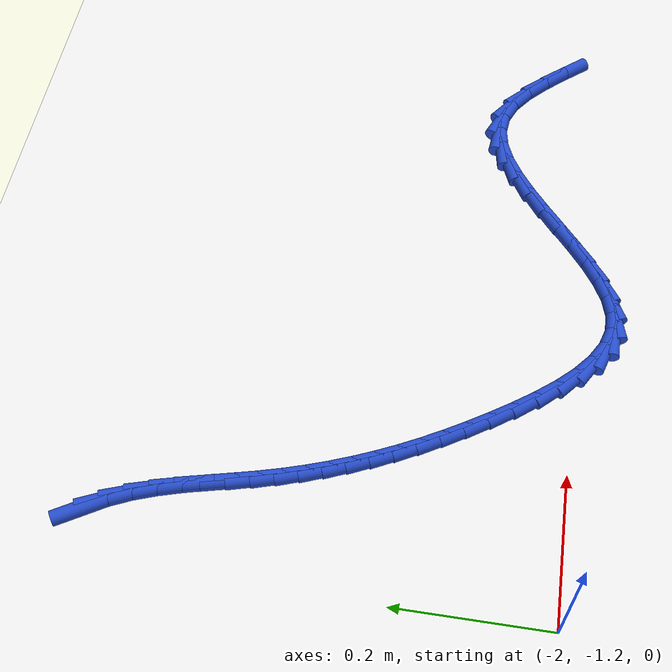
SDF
<sdf version="1.6">
 <world name="default">
  <model name="ground_plane">
   <static>1</static>
   <link name="link">
    <collision name="collision">
     <geometry><plane><normal>0 0 1</normal><size>100 100</size></plane></geometry>
     <surface><friction><ode><mu>100</mu><mu2>50</mu2></ode></friction></surface>
    </collision>
    <visual name="visual">
     <cast_shadows>0</cast_shadows>
     <geometry><plane><normal>0 0 1</normal><size>100 100</size></plane></geometry>
     <material>
      <script><uri>file://media/materials/scripts/gazebo.material</uri><name>Gazebo/WhiteGlow</name></script>
     </material>
    </visual>
   </link>
  </model>
  <model name="line">
   <link name="link_147">
    <pose>-1.9363176414669432 -0.6177902370051496 0.01 0 1.57 -1.034861090201774</pose>
    <collision name="collision">
     <geometry><cylinder><radius>0.01</radius><length>0.08</length></cylinder></geometry>
    </collision>
    <visual name="visual">
     <material>
      <script><name>Gazebo/Blue</name><uri>file://media/materials/scripts/gazebo.material</uri></script>
     </material>
     <geometry><cylinder><radius>0.01</radius><length>0.08</length></cylinder></geometry>
    </visual>
   </link>
   <link name="link_148">
    <pose>-1.9207948329437257 -0.6439265314123085 0.01 0 1.57 -1.1434166653134934</pose>
    <collision name="collision">
     <geometry><cylinder><radius>0.01</radius><length>0.08</length></cylinder></geometry>
    </collision>
    <visual name="visual">
     <material>
      <script><name>Gazebo/Blue</name><uri>file://media/materials/scripts/gazebo.material</uri></script>
     </material>
     <geometry><cylinder><radius>0.01</radius><length>0.08</length></cylinder></geometry>
    </visual>
   </link>
   <link name="link_149">
    <pose>-1.9081704486080344 -0.6716448138851764 0.01 0 1.57 -1.2273248722538117</pose>
    <collision name="collision">
     <geometry><cylinder><radius>0.01</radius><length>0.08</length></cylinder></geometry>
    </collision>
    <visual name="visual">
     <material>
      <script><name>Gazebo/Blue</name><uri>file://media/materials/scripts/gazebo.material</uri></script>
     </material>
     <geometry><cylinder><radius>0.01</radius><length>0.08</length></cylinder></geometry>
    </visual>
   </link>
   <link name="link_150">
    <pose>-1.8978308126777381 -0.7005549418208753 0.01 0 1.57 -1.286902234256808</pose>
    <collision name="collision">
     <geometry><cylinder><radius>0.01</radius><length>0.08</length></cylinder></geometry>
    </collision>
    <visual name="visual">
     <material>
      <script><name>Gazebo/Blue</name><uri>file://media/materials/scripts/gazebo.material</uri></script>
     </material>
     <geometry><cylinder><radius>0.01</radius><length>0.08</length></cylinder></geometry>
    </visual>
   </link>
   <link name="link_151">
    <pose>-1.8891617189211507 -0.7302664971006353 0.01 0 1.57 -1.3232535863805466</pose>
    <collision name="collision">
     <geometry><cylinder><radius>0.01</radius><length>0.08</length></cylinder></geometry>
    </collision>
    <visual name="visual">
     <material>
      <script><name>Gazebo/Blue</name><uri>file://media/materials/scripts/gazebo.material</uri></script>
     </material>
     <geometry><cylinder><radius>0.01</radius><length>0.08</length></cylinder></geometry>
    </visual>
   </link>
   <link name="link_152">
    <pose>-1.881548961106589 -0.7603890616056874 0.01 0 1.57 -1.3372513757271065</pose>
    <collision name="collision">
     <geometry><cylinder><radius>0.01</radius><length>0.08</length></cylinder></geometry>
    </collision>
    <visual name="visual">
     <material>
      <script><name>Gazebo/Blue</name><uri>file://media/materials/scripts/gazebo.material</uri></script>
     </material>
     <geometry><cylinder><radius>0.01</radius><length>0.08</length></cylinder></geometry>
    </visual>
   </link>
   <link name="link_153">
    <pose>-1.8743783330023678 -0.7905322172172621 0.01 0 1.57 -1.329001161126189</pose>
    <collision name="collision">
     <geometry><cylinder><radius>0.01</radius><length>0.08</length></cylinder></geometry>
    </collision>
    <visual name="visual">
     <material>
      <script><name>Gazebo/Blue</name><uri>file://media/materials/scripts/gazebo.material</uri></script>
     </material>
     <geometry><cylinder><radius>0.01</radius><length>0.08</length></cylinder></geometry>
    </visual>
   </link>
   <link name="link_154">
    <pose>-1.867035628378405 -0.8203055458180735 0.01 0 1.57 -1.3013802661261198</pose>
    <collision name="collision">
     <geometry><cylinder><radius>0.01</radius><length>0.08</length></cylinder></geometry>
    </collision>
    <visual name="visual">
     <material>
      <script><name>Gazebo/Blue</name><uri>file://media/materials/scripts/gazebo.material</uri></script>
     </material>
     <geometry><cylinder><radius>0.01</radius><length>0.08</length></cylinder></geometry>
    </visual>
   </link>
   <link name="link_155">
    <pose>-1.8590003077447448 -0.8494053651500976 0.01 0 1.57 -1.2685261240764916</pose>
    <collision name="collision">
     <geometry><cylinder><radius>0.01</radius><length>0.08</length></cylinder></geometry>
    </collision>
    <visual name="visual">
     <material>
      <script><name>Gazebo/Blue</name><uri>file://media/materials/scripts/gazebo.material</uri></script>
     </material>
     <geometry><cylinder><radius>0.01</radius><length>0.08</length></cylinder></geometry>
    </visual>
   </link>
   <link name="link_156">
    <pose>-1.850123606357902 -0.8778722581880176 0.01 0 1.57 -1.2344835854063088</pose>
    <collision name="collision">
     <geometry><cylinder><radius>0.01</radius><length>0.08</length></cylinder></geometry>
    </collision>
    <visual name="visual">
     <material>
      <script><name>Gazebo/Blue</name><uri>file://media/materials/scripts/gazebo.material</uri></script>
     </material>
     <geometry><cylinder><radius>0.01</radius><length>0.08</length></cylinder></geometry>
    </visual>
   </link>
   <link name="link_157">
    <pose>-1.8403489856803634 -0.9058322098241098 0.01 0 1.57 -1.1997817762520397</pose>
    <collision name="collision">
     <geometry><cylinder><radius>0.01</radius><length>0.08</length></cylinder></geometry>
    </collision>
    <visual name="visual">
     <material>
      <script><name>Gazebo/Blue</name><uri>file://media/materials/scripts/gazebo.material</uri></script>
     </material>
     <geometry><cylinder><radius>0.01</radius><length>0.08</length></cylinder></geometry>
    </visual>
   </link>
   <link name="link_158">
    <pose>-1.829619907174618 -0.9334112049506509 0.01 0 1.57 -1.1649841687664304</pose>
    <collision name="collision">
     <geometry><cylinder><radius>0.01</radius><length>0.08</length></cylinder></geometry>
    </collision>
    <visual name="visual">
     <material>
      <script><name>Gazebo/Blue</name><uri>file://media/materials/scripts/gazebo.material</uri></script>
     </material>
     <geometry><cylinder><radius>0.01</radius><length>0.08</length></cylinder></geometry>
    </visual>
   </link>
   <link name="link_159">
    <pose>-1.8178798323031522 -0.9607352284599163 0.01 0 1.57 -1.1306543832769718</pose>
    <collision name="collision">
     <geometry><cylinder><radius>0.01</radius><length>0.08</length></cylinder></geometry>
    </collision>
    <visual name="visual">
     <material>
      <script><name>Gazebo/Blue</name><uri>file://media/materials/scripts/gazebo.material</uri></script>
     </material>
     <geometry><cylinder><radius>0.01</radius><length>0.08</length></cylinder></geometry>
    </visual>
   </link>
   <link name="link_160">
    <pose>-1.8050722225284546 -0.9879302652441829 0.01 0 1.57 -1.097322142805407</pose>
    <collision name="collision">
     <geometry><cylinder><radius>0.01</radius><length>0.08</length></cylinder></geometry>
    </collision>
    <visual name="visual">
     <material>
      <script><name>Gazebo/Blue</name><uri>file://media/materials/scripts/gazebo.material</uri></script>
     </material>
     <geometry><cylinder><radius>0.01</radius><length>0.08</length></cylinder></geometry>
    </visual>
   </link>
   <link name="link_161">
    <pose>-1.7911405393130118 -1.0151223001957266 0.01 0 1.57 -1.0654540098204026</pose>
    <collision name="collision">
     <geometry><cylinder><radius>0.01</radius><length>0.08</length></cylinder></geometry>
    </collision>
    <visual name="visual">
     <material>
      <script><name>Gazebo/Blue</name><uri>file://media/materials/scripts/gazebo.material</uri></script>
     </material>
     <geometry><cylinder><radius>0.01</radius><length>0.08</length></cylinder></geometry>
    </visual>
   </link>
   <link name="link_162">
    <pose>-1.7760282441193118 -1.0424373182068238 0.01 0 1.57 -1.0354323734517614</pose>
    <collision name="collision">
     <geometry><cylinder><radius>0.01</radius><length>0.08</length></cylinder></geometry>
    </collision>
    <visual name="visual">
     <material>
      <script><name>Gazebo/Blue</name><uri>file://media/materials/scripts/gazebo.material</uri></script>
     </material>
     <geometry><cylinder><radius>0.01</radius><length>0.08</length></cylinder></geometry>
    </visual>
   </link>
   <link name="link_163">
    <pose>-1.7596787984098425 -1.0700013041697507 0.01 0 1.57 -1.0075443097486245</pose>
    <collision name="collision">
     <geometry><cylinder><radius>0.01</radius><length>0.08</length></cylinder></geometry>
    </collision>
    <visual name="visual">
     <material>
      <script><name>Gazebo/Blue</name><uri>file://media/materials/scripts/gazebo.material</uri></script>
     </material>
     <geometry><cylinder><radius>0.01</radius><length>0.08</length></cylinder></geometry>
    </visual>
   </link>
   <link name="link_164">
    <pose>-1.7420356636470915 -1.0979402429767837 0.01 0 1.57 -0.9816144681255161</pose>
    <collision name="collision">
     <geometry><cylinder><radius>0.01</radius><length>0.08</length></cylinder></geometry>
    </collision>
    <visual name="visual">
     <material>
      <script><name>Gazebo/Blue</name><uri>file://media/materials/scripts/gazebo.material</uri></script>
     </material>
     <geometry><cylinder><radius>0.01</radius><length>0.08</length></cylinder></geometry>
    </visual>
   </link>
   <link name="link_165">
    <pose>-1.723045453465914 -1.1263529052459933 0.01 0 1.57 -0.9482809157968837</pose>
    <collision name="collision">
     <geometry><cylinder><radius>0.01</radius><length>0.08</length></cylinder></geometry>
    </collision>
    <visual name="visual">
     <material>
      <script><name>Gazebo/Blue</name><uri>file://media/materials/scripts/gazebo.material</uri></script>
     </material>
     <geometry><cylinder><radius>0.01</radius><length>0.08</length></cylinder></geometry>
    </visual>
   </link>
   <link name="link_166">
    <pose>-1.7027341367216524 -1.1546529484486854 0.01 0 1.57 -0.8956474687059602</pose>
    <collision name="collision">
     <geometry><cylinder><radius>0.01</radius><length>0.08</length></cylinder></geometry>
    </collision>
    <visual name="visual">
     <material>
      <script><name>Gazebo/Blue</name><uri>file://media/materials/scripts/gazebo.material</uri></script>
     </material>
     <geometry><cylinder><radius>0.01</radius><length>0.08</length></cylinder></geometry>
    </visual>
   </link>
   <link name="link_167">
    <pose>-1.6812110438174583 -1.1815343282899622 0.01 0 1.57 -0.8174970625824748</pose>
    <collision name="collision">
     <geometry><cylinder><radius>0.01</radius><length>0.08</length></cylinder></geometry>
    </collision>
    <visual name="visual">
     <material>
      <script><name>Gazebo/Blue</name><uri>file://media/materials/scripts/gazebo.material</uri></script>
     </material>
     <geometry><cylinder><radius>0.01</radius><length>0.08</length></cylinder></geometry>
    </visual>
   </link>
   <link name="link_168">
    <pose>-1.658589459203699 -1.2056568632157734 0.01 0 1.57 -0.7034537497832879</pose>
    <collision name="collision">
     <geometry><cylinder><radius>0.01</radius><length>0.08</length></cylinder></geometry>
    </collision>
    <visual name="visual">
     <material>
      <script><name>Gazebo/Blue</name><uri>file://media/materials/scripts/gazebo.material</uri></script>
     </material>
     <geometry><cylinder><radius>0.01</radius><length>0.08</length></cylinder></geometry>
    </visual>
   </link>
   <link name="link_169">
    <pose>-1.6349826673307384 -1.2256803716720677 0.01 0 1.57 -0.5373219910592288</pose>
    <collision name="collision">
     <geometry><cylinder><radius>0.01</radius><length>0.08</length></cylinder></geometry>
    </collision>
    <visual name="visual">
     <material>
      <script><name>Gazebo/Blue</name><uri>file://media/materials/scripts/gazebo.material</uri></script>
     </material>
     <geometry><cylinder><radius>0.01</radius><length>0.08</length></cylinder></geometry>
    </visual>
   </link>
   <link name="link_170">
    <pose>-1.610503952648941 -1.2402646721047936 0.01 0 1.57 -0.29993066304078986</pose>
    <collision name="collision">
     <geometry><cylinder><radius>0.01</radius><length>0.08</length></cylinder></geometry>
    </collision>
    <visual name="visual">
     <material>
      <script><name>Gazebo/Blue</name><uri>file://media/materials/scripts/gazebo.material</uri></script>
     </material>
     <geometry><cylinder><radius>0.01</radius><length>0.08</length></cylinder></geometry>
    </visual>
   </link>
   <link name="link_171">
    <pose>-1.5852665996086723 -1.2480695829599004 0.01 0 1.57 0.002350959394377216</pose>
    <collision name="collision">
     <geometry><cylinder><radius>0.01</radius><length>0.08</length></cylinder></geometry>
    </collision>
    <visual name="visual">
     <material>
      <script><name>Gazebo/Blue</name><uri>file://media/materials/scripts/gazebo.material</uri></script>
     </material>
     <geometry><cylinder><radius>0.01</radius><length>0.08</length></cylinder></geometry>
    </visual>
   </link>
   <link name="link_172">
    <pose>-1.559380006771725 -1.2480087245191602 0.01 0 1.57 0.26882977944530445</pose>
    <collision name="collision">
     <geometry><cylinder><radius>0.01</radius><length>0.08</length></cylinder></geometry>
    </collision>
    <visual name="visual">
     <material>
      <script><name>Gazebo/Blue</name><uri>file://media/materials/scripts/gazebo.material</uri></script>
     </material>
     <geometry><cylinder><radius>0.01</radius><length>0.08</length></cylinder></geometry>
    </visual>
   </link>
   <link name="link_173">
    <pose>-1.532927157390339 -1.240720999180531 0.01 0 1.57 0.45422369668784557</pose>
    <collision name="collision">
     <geometry><cylinder><radius>0.01</radius><length>0.08</length></cylinder></geometry>
    </collision>
    <visual name="visual">
     <material>
      <script><name>Gazebo/Blue</name><uri>file://media/materials/scripts/gazebo.material</uri></script>
     </material>
     <geometry><cylinder><radius>0.01</radius><length>0.08</length></cylinder></geometry>
    </visual>
   </link>
   <link name="link_174">
    <pose>-1.5059800403043004 -1.2275633953119507 0.01 0 1.57 0.5732353460603471</pose>
    <collision name="collision">
     <geometry><cylinder><radius>0.01</radius><length>0.08</length></cylinder></geometry>
    </collision>
    <visual name="visual">
     <material>
      <script><name>Gazebo/Blue</name><uri>file://media/materials/scripts/gazebo.material</uri></script>
     </material>
     <geometry><cylinder><radius>0.01</radius><length>0.08</length></cylinder></geometry>
    </visual>
   </link>
   <link name="link_175">
    <pose>-1.4786106082294799 -1.209895260668808 0.01 0 1.57 0.6441812145942282</pose>
    <collision name="collision">
     <geometry><cylinder><radius>0.01</radius><length>0.08</length></cylinder></geometry>
    </collision>
    <visual name="visual">
     <material>
      <script><name>Gazebo/Blue</name><uri>file://media/materials/scripts/gazebo.material</uri></script>
     </material>
     <geometry><cylinder><radius>0.01</radius><length>0.08</length></cylinder></geometry>
    </visual>
   </link>
   <link name="link_176">
    <pose>-1.4508908138817458 -1.1890759430064912 0.01 0 1.57 0.6793536901166558</pose>
    <collision name="collision">
     <geometry><cylinder><radius>0.01</radius><length>0.08</length></cylinder></geometry>
    </collision>
    <visual name="visual">
     <material>
      <script><name>Gazebo/Blue</name><uri>file://media/materials/scripts/gazebo.material</uri></script>
     </material>
     <geometry><cylinder><radius>0.01</radius><length>0.08</length></cylinder></geometry>
    </visual>
   </link>
   <link name="link_177">
    <pose>-1.4228926099769663 -1.1664647900803875 0.01 0 1.57 0.6850303781960572</pose>
    <collision name="collision">
     <geometry><cylinder><radius>0.01</radius><length>0.08</length></cylinder></geometry>
    </collision>
    <visual name="visual">
     <material>
      <script><name>Gazebo/Blue</name><uri>file://media/materials/scripts/gazebo.material</uri></script>
     </material>
     <geometry><cylinder><radius>0.01</radius><length>0.08</length></cylinder></geometry>
    </visual>
   </link>
   <link name="link_178">
    <pose>-1.394687949231011 -1.143421149645885 0.01 0 1.57 0.6626945877494503</pose>
    <collision name="collision">
     <geometry><cylinder><radius>0.01</radius><length>0.08</length></cylinder></geometry>
    </collision>
    <visual name="visual">
     <material>
      <script><name>Gazebo/Blue</name><uri>file://media/materials/scripts/gazebo.material</uri></script>
     </material>
     <geometry><cylinder><radius>0.01</radius><length>0.08</length></cylinder></geometry>
    </visual>
   </link>
   <link name="link_179">
    <pose>-1.366348784359748 -1.121304369458372 0.01 0 1.57 0.6095285789791981</pose>
    <collision name="collision">
     <geometry><cylinder><radius>0.01</radius><length>0.08</length></cylinder></geometry>
    </collision>
    <visual name="visual">
     <material>
      <script><name>Gazebo/Blue</name><uri>file://media/materials/scripts/gazebo.material</uri></script>
     </material>
     <geometry><cylinder><radius>0.01</radius><length>0.08</length></cylinder></geometry>
    </visual>
   </link>
   <link name="link_180">
    <pose>-1.337947068079047 -1.101473797273236 0.01 0 1.57 0.5181056622866856</pose>
    <collision name="collision">
     <geometry><cylinder><radius>0.01</radius><length>0.08</length></cylinder></geometry>
    </collision>
    <visual name="visual">
     <material>
      <script><name>Gazebo/Blue</name><uri>file://media/materials/scripts/gazebo.material</uri></script>
     </material>
     <geometry><cylinder><radius>0.01</radius><length>0.08</length></cylinder></geometry>
    </visual>
   </link>
   <link name="link_181">
    <pose>-1.3095547531047766 -1.0852887808458653 0.01 0 1.57 0.37610560511806446</pose>
    <collision name="collision">
     <geometry><cylinder><radius>0.01</radius><length>0.08</length></cylinder></geometry>
    </collision>
    <visual name="visual">
     <material>
      <script><name>Gazebo/Blue</name><uri>file://media/materials/scripts/gazebo.material</uri></script>
     </material>
     <geometry><cylinder><radius>0.01</radius><length>0.08</length></cylinder></geometry>
    </visual>
   </link>
   <link name="link_182">
    <pose>-1.2812437921528061 -1.0741086679316485 0.01 0 1.57 0.16939305844084349</pose>
    <collision name="collision">
     <geometry><cylinder><radius>0.01</radius><length>0.08</length></cylinder></geometry>
    </collision>
    <visual name="visual">
     <material>
      <script><name>Gazebo/Blue</name><uri>file://media/materials/scripts/gazebo.material</uri></script>
     </material>
     <geometry><cylinder><radius>0.01</radius><length>0.08</length></cylinder></geometry>
    </visual>
   </link>
   <link name="link_183">
    <pose>-1.2530861379390044 -1.069292806285973 0.01 0 1.57 -0.10372550649564835</pose>
    <collision name="collision">
     <geometry><cylinder><radius>0.01</radius><length>0.08</length></cylinder></geometry>
    </collision>
    <visual name="visual">
     <material>
      <script><name>Gazebo/Blue</name><uri>file://media/materials/scripts/gazebo.material</uri></script>
     </material>
     <geometry><cylinder><radius>0.01</radius><length>0.08</length></cylinder></geometry>
    </visual>
   </link>
   <link name="link_184">
    <pose>-1.2251537431792403 -1.0722005436642268 0.01 0 1.57 -0.4063447718366019</pose>
    <collision name="collision">
     <geometry><cylinder><radius>0.01</radius><length>0.08</length></cylinder></geometry>
    </collision>
    <visual name="visual">
     <material>
      <script><name>Gazebo/Blue</name><uri>file://media/materials/scripts/gazebo.material</uri></script>
     </material>
     <geometry><cylinder><radius>0.01</radius><length>0.08</length></cylinder></geometry>
    </visual>
   </link>
   <link name="link_185">
    <pose>-1.1975243115938254 -1.0840892770382493 0.01 0 1.57 -0.6370351442170838</pose>
    <collision name="collision">
     <geometry><cylinder><radius>0.01</radius><length>0.08</length></cylinder></geometry>
    </collision>
    <visual name="visual">
     <material>
      <script><name>Gazebo/Blue</name><uri>file://media/materials/scripts/gazebo.material</uri></script>
     </material>
     <geometry><cylinder><radius>0.01</radius><length>0.08</length></cylinder></geometry>
    </visual>
   </link>
   <link name="link_186">
    <pose>-1.170391191987153 -1.1041663081222617 0.01 0 1.57 -0.7707139877548143</pose>
    <collision name="collision">
     <geometry><cylinder><radius>0.01</radius><length>0.08</length></cylinder></geometry>
    </collision>
    <visual name="visual">
     <material>
      <script><name>Gazebo/Blue</name><uri>file://media/materials/scripts/gazebo.material</uri></script>
     </material>
     <geometry><cylinder><radius>0.01</radius><length>0.08</length></cylinder></geometry>
    </visual>
   </link>
   <link name="link_187">
    <pose>-1.1440548316972983 -1.1297403521255218 0.01 0 1.57 -0.8427292709573139</pose>
    <collision name="collision">
     <geometry><cylinder><radius>0.01</radius><length>0.08</length></cylinder></geometry>
    </collision>
    <visual name="visual">
     <material>
      <script><name>Gazebo/Blue</name><uri>file://media/materials/scripts/gazebo.material</uri></script>
     </material>
     <geometry><cylinder><radius>0.01</radius><length>0.08</length></cylinder></geometry>
    </visual>
   </link>
   <link name="link_188">
    <pose>-1.1188197165975218 -1.1580485312285247 0.01 0 1.57 -0.8705906756874963</pose>
    <collision name="collision">
     <geometry><cylinder><radius>0.01</radius><length>0.08</length></cylinder></geometry>
    </collision>
    <visual name="visual">
     <material>
      <script><name>Gazebo/Blue</name><uri>file://media/materials/scripts/gazebo.material</uri></script>
     </material>
     <geometry><cylinder><radius>0.01</radius><length>0.08</length></cylinder></geometry>
    </visual>
   </link>
  </model>
 </world>
</sdf>
